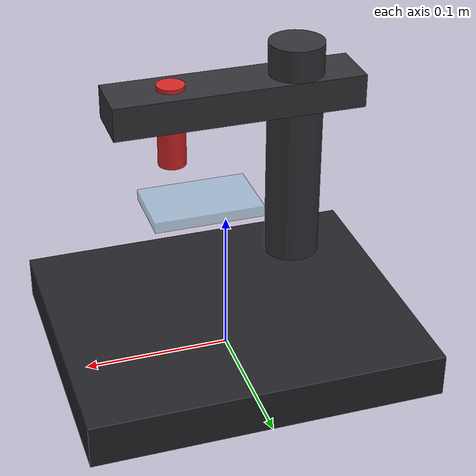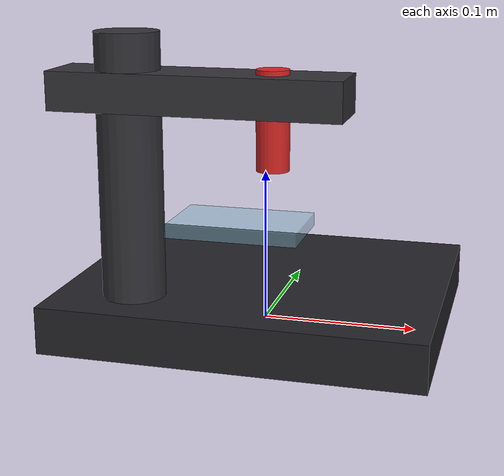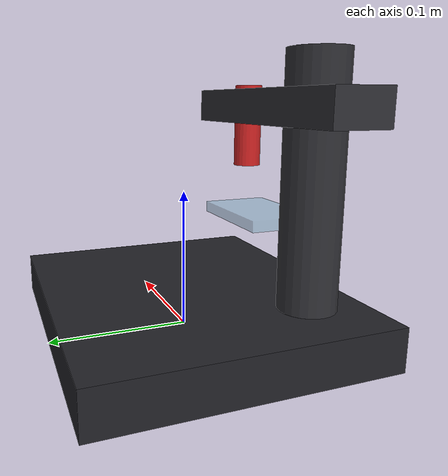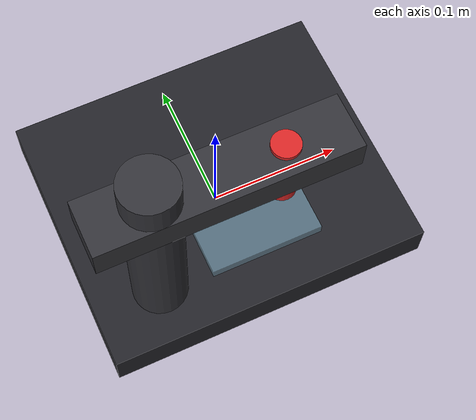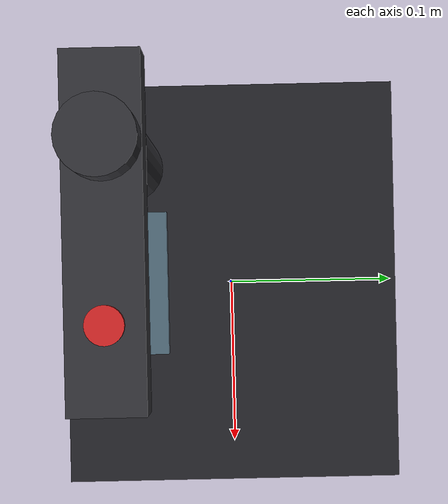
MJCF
<?xml version="1.0" encoding="utf-8"?>
<mujoco model="real_lab_minnesota_university_ctrap">
  <compiler angle="radian" autolimits="true"/>
  <default>
    <default class="body"><geom contype="1" conaffinity="1"/></default>
  </default>
  <worldbody>
    <body name="base">
      <geom type="box" size="0.12 0.1 0.015" pos="0 0 0.015" rgba="0.14 0.14 0.16 1" class="body"/>
      <geom type="cylinder" size="0.02 0.09" pos="-0.07 -0.06 0.105" rgba="0.2 0.2 0.22 1" class="body"/>
      <geom type="box" size="0.09 0.02 0.012" pos="-0.025 -0.06 0.16" rgba="0.2 0.2 0.22 1" class="body"/>
      <geom type="cylinder" size="0.01 0.03" pos="0.02 -0.06 0.145" rgba="0.85 0.15 0.15 1" class="body"/>
      <body name="microfluidic_chip_stage" pos="0.0 -0.06 0.08">
        <joint name="microfluidic_chip_stage_joint" type="slide" axis="1 0 0" range="-0.03 0.03" damping="1.0" frictionloss="0.4"/>
  <geom type="box" size="0.04 0.025 0.004" pos="0 0 0" rgba="0.55 0.75 0.85 0.5" class="body"/>
      </body>
    </body>
  </worldbody>
</mujoco>
